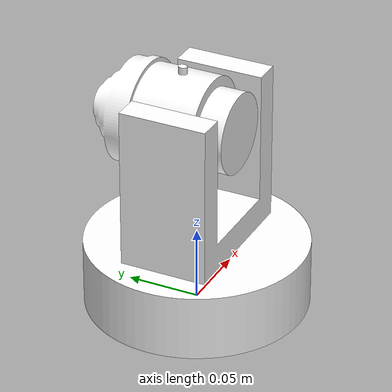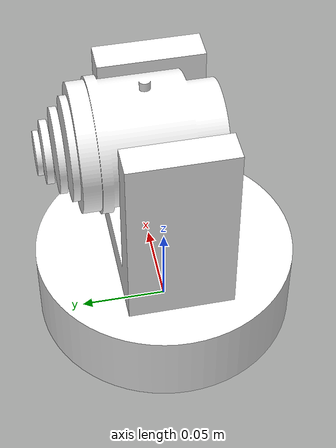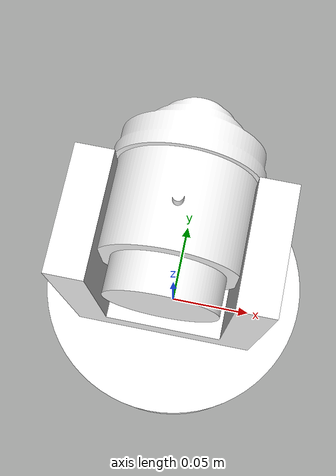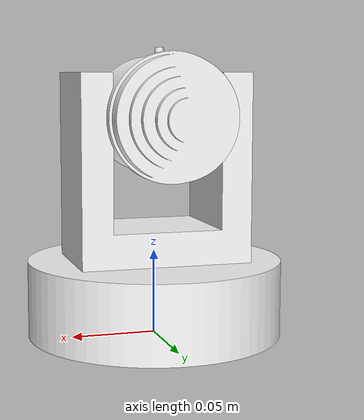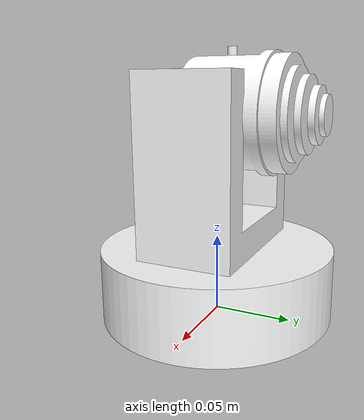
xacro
<?xml version="1.0"?>
<robot name="camera_robot" xmlns:xacro="http://www.ros.org/wiki/xacro">

    <xacro:include filename="common_properties.urdf.xacro" />

    <xacro:arg name="package_name" default="camera_description" />
    <xacro:arg name="mesh_dir" default="meshes" />

    <xacro:property name="global_scale" value="1.0" />

    <!-- Base -->
    <xacro:property name="base_mesh" value="base.STL" />
    <xacro:property name="base_scale" value="${global_scale} ${global_scale} ${global_scale}" />
    <xacro:property name="base_visual_xyz" value="0 0 0" />
    <xacro:property name="base_visual_rpy" value="0 0 0" />

    <!-- cuerpo en u -->
    <xacro:property name="body_u_mesh" value="cuerpo_u.STL" />
    <xacro:property name="body_u_scale" value="${global_scale} ${global_scale} ${global_scale}" />
    <xacro:property name="body_u_xyz" value="0 0 0.045" />
    <xacro:property name="body_u_rpy" value="0 0 0" />
    <xacro:property name="body_u_visual_xyz" value="0 0 0" />
    <xacro:property name="body_u_visual_rpy" value="0 0 0" />
    <xacro:property name="body_u_axis" value="0 0 1" />

    <!-- cuerpo camara -->
    <xacro:property name="camera_lens_mesh" value="lente_v3.STL" />
    <xacro:property name="camera_lens_scale" value="${global_scale} ${global_scale*0.85} ${global_scale*0.85}" />
    <xacro:property name="camera_lens_xyz" value="0 0.03 0.085" />
    <xacro:property name="camera_lens_rpy" value="0 0 0" />
    <xacro:property name="camera_lens_axis" value="1 0 0" />
    <xacro:property name="camera_lens_visual_xyz" value="0 0 0" />
    <xacro:property name="camera_lens_visual_rpy" value="0 0 1.5708" />

    <!-- Macros auxiliares -->
    <!-- Link tipo base -->
    <xacro:macro name="mesh_link_base" params="name mesh scale">
        <link name="${name}">

            <visual>
                <origin xyz="${base_visual_xyz}" rpy="${base_visual_rpy}" />
                <geometry>
                    <mesh filename="package://$(arg package_name)/$(arg mesh_dir)/${mesh}"
                        scale="${scale}" />
                </geometry>
                <material name="white" />
            </visual>

        </link>
    </xacro:macro>

    <xacro:macro name="mesh_link_sphere" params="name mesh scale">
        <link name="${name}">

            <visual>
                <origin xyz="${camera_lens_visual_xyz}" rpy="${camera_lens_visual_rpy}" />
                <geometry>
                    <mesh filename="package://$(arg package_name)/$(arg mesh_dir)/${mesh}"
                        scale="${scale}" />
                </geometry>
                <material name="white" />
            </visual>

        </link>
    </xacro:macro>

    <!-- Instancia de Macros-links -->
    <!-- Frame de proyección en el suelo -->
    <link name="base_footprint" />

    <xacro:mesh_link_base
        name="base_link"
        mesh="${base_mesh}"
        scale="${base_scale}" />

    <xacro:mesh_link_base
        name="body_u_link"
        mesh="${body_u_mesh}"
        scale="${body_u_scale}" />

    <xacro:mesh_link_sphere
        name="camera_lens_link"
        mesh="${camera_lens_mesh}"
        scale="${camera_lens_scale}" />

    <!-- Joints -->
    <joint name="base_joint" type="fixed">
        <parent link="base_footprint" />
        <child link="base_link" />
        <origin xyz="0 0 0" rpy="0 0 0" />
    </joint>

    <joint name="body_u_joint" type="continuous">
        <parent link="base_link" />
        <child link="body_u_link" />
        <origin xyz="0 0 0.045" rpy="0 0 0" />
        <axis xyz="0 0 1" />
    </joint>

    <joint name="camera_lens_joint" type="revolute">
        <origin xyz="${camera_lens_xyz}" rpy="${camera_lens_rpy}" />
        <parent link="body_u_link" />
        <child link="camera_lens_link" />
        <axis xyz="${camera_lens_axis}" />
        <limit lower="-0.5236" upper="1.5708" effort="5.0" velocity="5.24" />
    </joint>

</robot>

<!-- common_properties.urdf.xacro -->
<robot xmlns:xacro="http://www.ros.org/wiki/xacro">

    <material name="white">
        <color rgba="1 1 1 1"/>
    </material>

    <material name="black">
        <color rgba="0 0 0 1"/>
    </material>

    <material name="grey">
        <color rgba="0.5 0.5 0.5 1"/>
    </material>

</robot>
